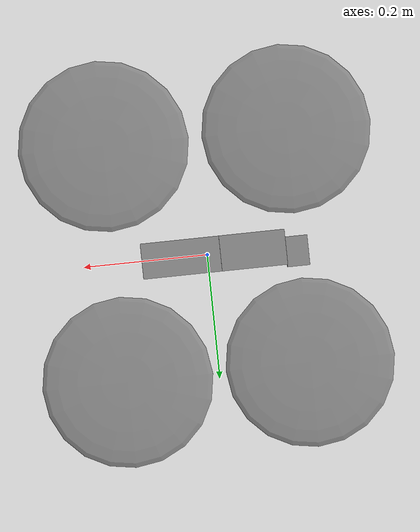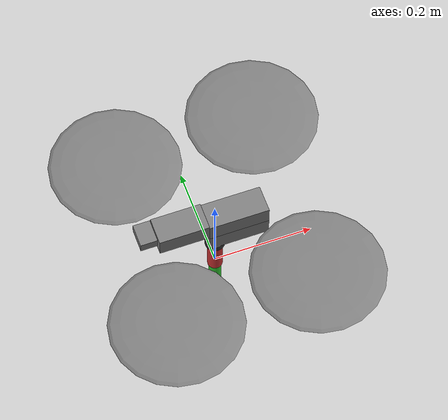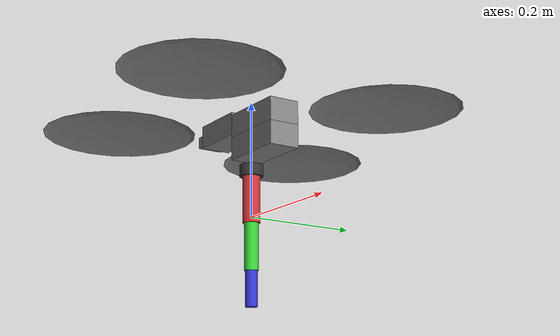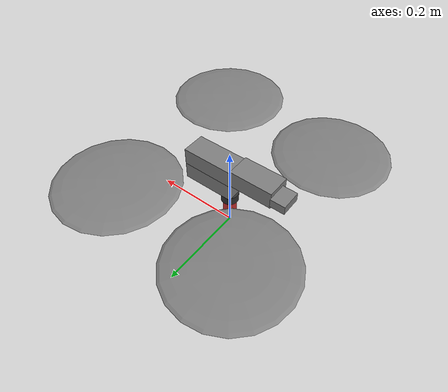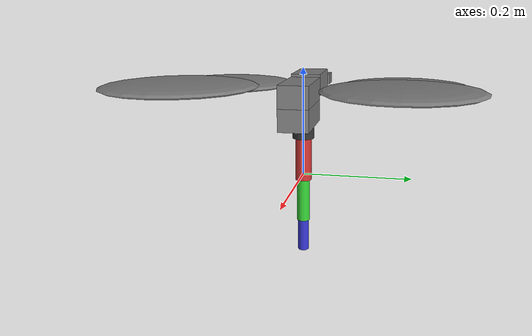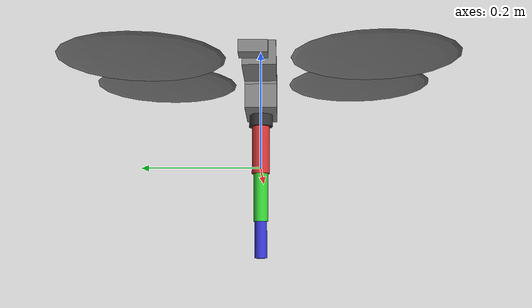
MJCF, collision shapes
<mujoco model="Skydio X2">
  <compiler autolimits="true" assetdir="/home/kmirakho/.cache/robot_descriptions/mujoco_menagerie/skydio_x2/assets"/>

  <option timestep="0.01" density="1.225" viscosity="1.8e-5"/>

  <visual>
    <global offwidth="1920" offheight="1080"/>
  </visual>

  <default>
    <default class="x2">
      <geom mass="0"/>
      <motor ctrlrange="0 13"/>
      <mesh scale="0.01 0.01 0.01"/>
      <default class="visual">
        <geom group="2" type="mesh" contype="0" conaffinity="0"/>
      </default>
      <default class="collision">
        <geom group="3" type="box"/>
        <default class="rotor">
          <geom type="ellipsoid" size=".13 .13 .01"/>
        </default>
      </default>
      <site group="5"/>
    </default>
  </default>

  <asset>
    <texture type="2d" file="X2_lowpoly_texture_SpinningProps_1024.png"/>
    <material name="phong3SG" texture="X2_lowpoly_texture_SpinningProps_1024"/>
    <material name="invisible" rgba="0 0 0 0"/>

    <mesh class="x2" file="X2_lowpoly.obj"/>
  </asset>

  <worldbody>
    <light name="spotlight" mode="targetbodycom" target="x2" pos="0 -1 2"/>
    <body name="x2" pos="0 0 0.1" childclass="x2">
      <freejoint/>
      <camera name="track" pos="-1 0 .5" xyaxes="0 -1 0 1 0 2" mode="trackcom"/>
      <site name="imu" pos="0 0 .02"/>
      <geom material="phong3SG" mesh="X2_lowpoly" class="visual" quat="0 0 1 1"/>
      <geom class="collision" size=".06 .027 .02" pos=".04 0 .02"/>
      <geom class="collision" size=".06 .027 .02" pos=".04 0 .06"/>
      <geom class="collision" size=".05 .027 .02" pos="-.07 0 .065"/>
      <geom class="collision" size=".023 .017 .01" pos="-.137 .008 .065" quat="1 0 0 1"/>
      <geom name="rotor1" class="rotor" pos="-.14 -.18 .05" mass=".25"/>
      <geom name="rotor2" class="rotor" pos="-.14 .18 .05" mass=".25"/>
      <geom name="rotor3" class="rotor" pos=".14 .18 .08" mass=".25"/>
      <geom name="rotor4" class="rotor" pos=".14 -.18 .08" mass=".25"/>
      <geom size=".16 .04 .02" pos="0 0 0.02" type="ellipsoid" mass=".325" class="visual" material="invisible"/>
      <site name="thrust1" pos="-.14 -.18 .05"/>
      <site name="thrust2" pos="-.14 .18 .05"/>
      <site name="thrust3" pos=".14 .18 .08"/>
      <site name="thrust4" pos=".14 -.18 .08"/>

      <!-- 3-DoF Lightweight Arm Attachment -->
      <body name="arm_base" pos="0 0 -0.02">
        <geom type="cylinder" size="0.02 0.01" rgba="0.2 0.2 0.2 1" mass="0.02"/>
        <body name="link1" pos="0 0 -0.01">
          <joint name="joint1" type="hinge" axis="0 0 1" range="-3.14 3.14" damping="0.01"/>
          <geom type="cylinder" size="0.015 0.04" pos="0 0 -0.04" rgba="0.8 0.2 0.2 1" mass="0.05"/>
          <body name="link2" pos="0 0 -0.08">
            <joint name="joint2" type="hinge" axis="0 1 0" range="-1.57 1.57" damping="0.01"/>
            <geom type="cylinder" size="0.012 0.04" pos="0 0 -0.04" rgba="0.2 0.8 0.2 1" mass="0.04"/>
            <body name="link3" pos="0 0 -0.08">
              <joint name="joint3" type="hinge" axis="0 1 0" range="-1.57 1.57" damping="0.01"/>
              <geom type="cylinder" size="0.01 0.03" pos="0 0 -0.03" rgba="0.2 0.2 0.8 1" mass="0.03"/>
              <!-- End Effector -->
              <site name="end_effector" pos="0 0 -0.06" size="0.01" rgba="1 0 0 1"/>
            </body>
          </body>
        </body>
      </body>
    </body>
  </worldbody>

  <actuator>
    <motor class="x2" name="thrust1" site="thrust1" gear="0 0 1 0 0 -.0201"/>
    <motor class="x2" name="thrust2" site="thrust2" gear="0 0 1 0 0  .0201"/>
    <motor class="x2" name="thrust3" site="thrust3" gear="0 0 1 0 0  .0201"/>
    <motor class="x2" name="thrust4" site="thrust4" gear="0 0 1 0 0 -.0201"/>

    <motor name="torque_joint1" joint="joint1" ctrlrange="-1 1" gear="0.2"/>
    <motor name="torque_joint2" joint="joint2" ctrlrange="-1 1" gear="0.2"/>
    <motor name="torque_joint3" joint="joint3" ctrlrange="-1 1" gear="0.2"/>
  </actuator>

  <sensor>
    <gyro name="body_gyro" site="imu"/>
    <accelerometer name="body_linacc" site="imu"/>
    <framequat name="body_quat" objtype="site" objname="imu"/>
  </sensor>

  <keyframe>
    <key name="hover" qpos="0 0 .3 1 0 0 0" ctrl="3.2495625 3.2495625 3.2495625 3.2495625"/>
  </keyframe>
</mujoco>
